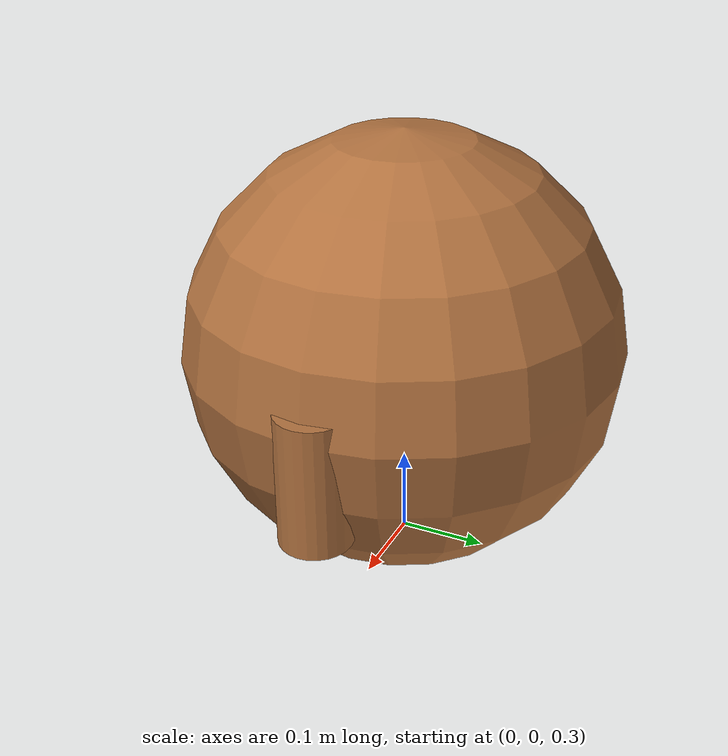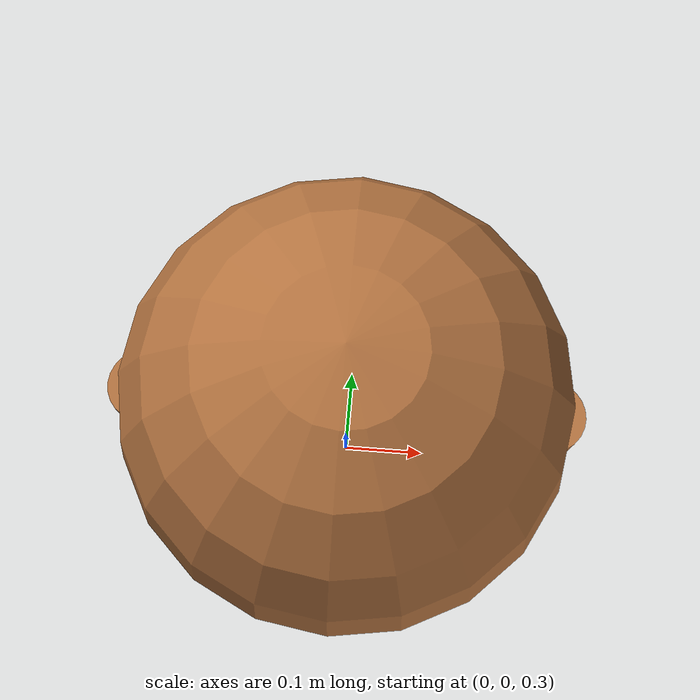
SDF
<?xml version="1.0"?>
<sdf version="1.6">
  <model name="pou">
    <static>false</static>
    <pose>0 0 0.3 0 0 0</pose>

    <!-- Base platform for mobility (invisible) -->
    <link name="base_link">
      <pose>0 0 0 0 0 0</pose>
      <inertial>
        <mass>5.0</mass>
        <inertia>
          <ixx>0.1</ixx>
          <iyy>0.1</iyy>
          <izz>0.1</izz>
        </inertia>
      </inertial>
      <collision name="collision">
        <geometry>
          <cylinder>
            <radius>0.15</radius>
            <length>0.05</length>
          </cylinder>
        </geometry>
      </collision>
    </link>

    <!-- Main body (brown rounded shape like Pou) -->
    <link name="body">
      <pose>0 0 0.25 0 0 0</pose>
      <inertial>
        <mass>2.0</mass>
        <inertia>
          <ixx>0.05</ixx>
          <iyy>0.05</iyy>
          <izz>0.05</izz>
        </inertia>
      </inertial>
      <collision name="body_collision">
        <geometry>
          <sphere>
            <radius>0.25</radius>
          </sphere>
        </geometry>
      </collision>
      <visual name="body_visual">
        <geometry>
          <sphere>
            <radius>0.25</radius>
          </sphere>
        </geometry>
        <material>
          <ambient>0.6 0.4 0.2 1</ambient>
          <diffuse>0.7 0.45 0.25 1</diffuse>
          <specular>0.2 0.2 0.2 1</specular>
          <emissive>0.1 0.05 0.02 1</emissive>
        </material>
      </visual>
    </link>

    <!-- Left eye -->
    <link name="left_eye">
      <pose>-0.08 0.15 0.3 0 0 0</pose>
      <inertial>
        <mass>0.01</mass>
        <inertia>
          <ixx>0.001</ixx>
          <iyy>0.001</iyy>
          <izz>0.001</izz>
        </inertia>
      </inertial>
      <visual name="eye_white">
        <geometry>
          <sphere>
            <radius>0.06</radius>
          </sphere>
        </geometry>
        <material>
          <ambient>1 1 1 1</ambient>
          <diffuse>1 1 1 1</diffuse>
        </material>
      </visual>
      <visual name="pupil">
        <pose>0 0.03 0 0 0 0</pose>
        <geometry>
          <sphere>
            <radius>0.03</radius>
          </sphere>
        </geometry>
        <material>
          <ambient>0 0 0 1</ambient>
          <diffuse>0 0 0 1</diffuse>
        </material>
      </visual>
    </link>

    <!-- Right eye -->
    <link name="right_eye">
      <pose>0.08 0.15 0.3 0 0 0</pose>
      <inertial>
        <mass>0.01</mass>
        <inertia>
          <ixx>0.001</ixx>
          <iyy>0.001</iyy>
          <izz>0.001</izz>
        </inertia>
      </inertial>
      <visual name="eye_white">
        <geometry>
          <sphere>
            <radius>0.06</radius>
          </sphere>
        </geometry>
        <material>
          <ambient>1 1 1 1</ambient>
          <diffuse>1 1 1 1</diffuse>
        </material>
      </visual>
      <visual name="pupil">
        <pose>0 0.03 0 0 0 0</pose>
        <geometry>
          <sphere>
            <radius>0.03</radius>
          </sphere>
        </geometry>
        <material>
          <ambient>0 0 0 1</ambient>
          <diffuse>0 0 0 1</diffuse>
        </material>
      </visual>
    </link>

    <!-- Mouth (cute smile) -->
    <link name="mouth">
      <pose>0 0.2 0.2 0 0 0</pose>
      <visual name="mouth_visual">
        <geometry>
          <box>
            <size>0.12 0.02 0.03</size>
          </box>
        </geometry>
        <material>
          <ambient>0.8 0.3 0.3 1</ambient>
          <diffuse>0.9 0.4 0.4 1</diffuse>
        </material>
      </visual>
    </link>

    <!-- Left arm -->
    <link name="left_arm">
      <pose>-0.22 0 0.2 0 0 0</pose>
      <inertial>
        <mass>0.1</mass>
        <inertia>
          <ixx>0.001</ixx>
          <iyy>0.001</iyy>
          <izz>0.001</izz>
        </inertia>
      </inertial>
      <visual name="arm_visual">
        <geometry>
          <cylinder>
            <radius>0.04</radius>
            <length>0.15</length>
          </cylinder>
        </geometry>
        <material>
          <ambient>0.6 0.4 0.2 1</ambient>
          <diffuse>0.7 0.45 0.25 1</diffuse>
        </material>
      </visual>
    </link>

    <!-- Right arm -->
    <link name="right_arm">
      <pose>0.22 0 0.2 0 0 0</pose>
      <inertial>
        <mass>0.1</mass>
        <inertia>
          <ixx>0.001</ixx>
          <iyy>0.001</iyy>
          <izz>0.001</izz>
        </inertia>
      </inertial>
      <visual name="arm_visual">
        <geometry>
          <cylinder>
            <radius>0.04</radius>
            <length>0.15</length>
          </cylinder>
        </geometry>
        <material>
          <ambient>0.6 0.4 0.2 1</ambient>
          <diffuse>0.7 0.45 0.25 1</diffuse>
        </material>
      </visual>
    </link>

    <!-- Joints to connect everything -->
    <joint name="base_to_body" type="fixed">
      <parent>base_link</parent>
      <child>body</child>
    </joint>

    <joint name="body_to_left_eye" type="fixed">
      <parent>body</parent>
      <child>left_eye</child>
    </joint>

    <joint name="body_to_right_eye" type="fixed">
      <parent>body</parent>
      <child>right_eye</child>
    </joint>

    <joint name="body_to_mouth" type="fixed">
      <parent>body</parent>
      <child>mouth</child>
    </joint>

    <joint name="body_to_left_arm" type="revolute">
      <parent>body</parent>
      <child>left_arm</child>
      <axis>
        <xyz>0 0 1</xyz>
        <limit>
          <lower>-0.5</lower>
          <upper>0.5</upper>
        </limit>
      </axis>
    </joint>

    <joint name="body_to_right_arm" type="revolute">
      <parent>body</parent>
      <child>right_arm</child>
      <axis>
        <xyz>0 0 1</xyz>
        <limit>
          <lower>-0.5</lower>
          <upper>0.5</upper>
        </limit>
      </axis>
    </joint>

    <!-- Differential drive plugin for movement -->
    <plugin name="diff_drive" filename="libgazebo_ros_diff_drive.so">
      <ros>
        <namespace>/</namespace>
        <remapping>cmd_vel:=cmd_vel</remapping>
        <remapping>odom:=odom</remapping>
      </ros>

      <update_rate>50</update_rate>
      <left_joint>left_wheel_joint</left_joint>
      <right_joint>right_wheel_joint</right_joint>

      <wheel_separation>0.3</wheel_separation>
      <wheel_diameter>0.1</wheel_diameter>

      <max_wheel_torque>20</max_wheel_torque>
      <max_wheel_acceleration>1.0</max_wheel_acceleration>

      <publish_odom>true</publish_odom>
      <publish_odom_tf>true</publish_odom_tf>
      <publish_wheel_tf>false</publish_wheel_tf>

      <odometry_frame>odom</odometry_frame>
      <robot_base_frame>base_link</robot_base_frame>
    </plugin>

    <!-- Hidden wheels for movement -->
    <link name="left_wheel">
      <pose>-0.15 0 0.05 1.5707 0 0</pose>
      <inertial>
        <mass>0.5</mass>
        <inertia>
          <ixx>0.001</ixx>
          <iyy>0.001</iyy>
          <izz>0.001</izz>
        </inertia>
      </inertial>
      <collision name="collision">
        <geometry>
          <cylinder>
            <radius>0.05</radius>
            <length>0.03</length>
          </cylinder>
        </geometry>
        <surface>
          <friction>
            <ode>
              <mu>1.0</mu>
              <mu2>1.0</mu2>
            </ode>
          </friction>
        </surface>
      </collision>
    </link>

    <link name="right_wheel">
      <pose>0.15 0 0.05 1.5707 0 0</pose>
      <inertial>
        <mass>0.5</mass>
        <inertia>
          <ixx>0.001</ixx>
          <iyy>0.001</iyy>
          <izz>0.001</izz>
        </inertia>
      </inertial>
      <collision name="collision">
        <geometry>
          <cylinder>
            <radius>0.05</radius>
            <length>0.03</length>
          </cylinder>
        </geometry>
        <surface>
          <friction>
            <ode>
              <mu>1.0</mu>
              <mu2>1.0</mu2>
            </ode>
          </friction>
        </surface>
      </collision>
    </link>

    <joint name="left_wheel_joint" type="revolute">
      <parent>base_link</parent>
      <child>left_wheel</child>
      <axis>
        <xyz>0 1 0</xyz>
      </axis>
    </joint>

    <joint name="right_wheel_joint" type="revolute">
      <parent>base_link</parent>
      <child>right_wheel</child>
      <axis>
        <xyz>0 1 0</xyz>
      </axis>
    </joint>

  </model>
</sdf>
